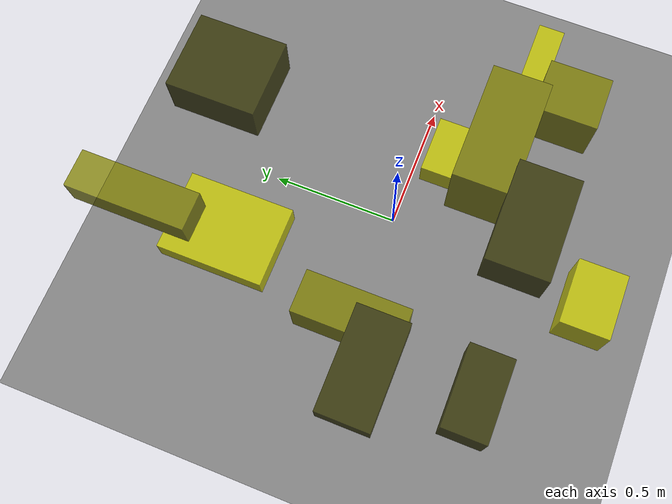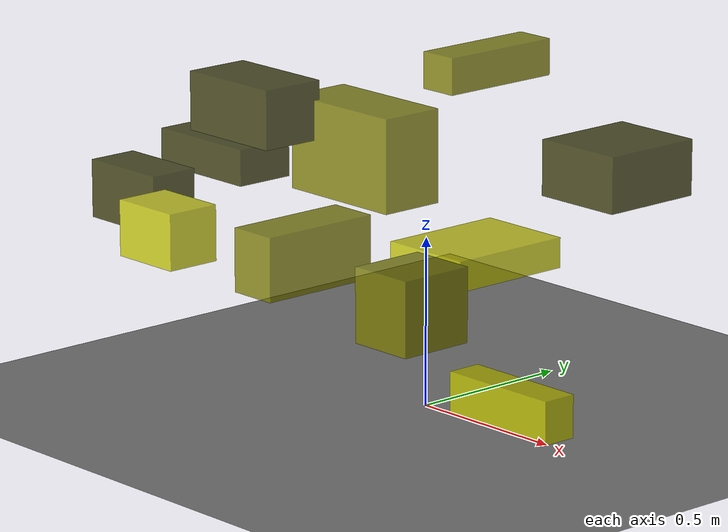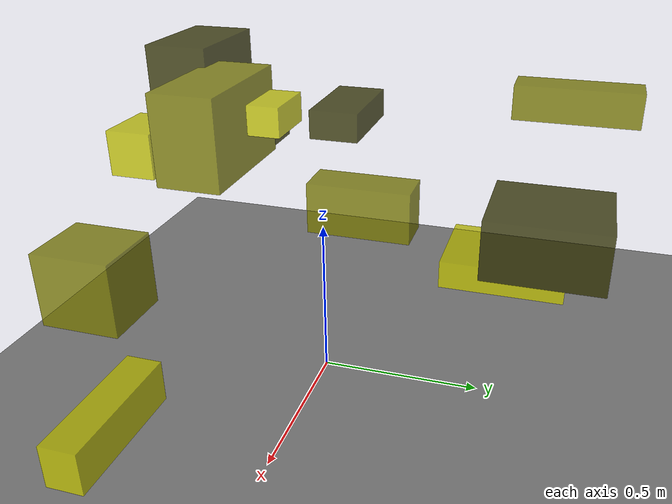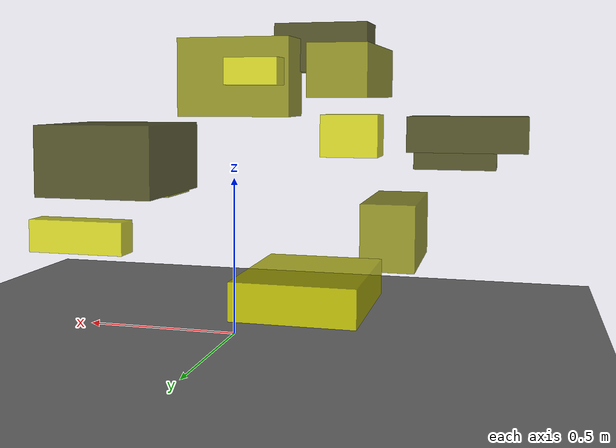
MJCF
<?xml version="1.0"?>
<mujoco model="obstacle_scene">
  <compiler angle="radian" coordinate="local"/>
  <option timestep="0.001" gravity="0 0 -9.81"/>

  <asset>
    <material name="obstacle_mat" rgba="0.8 0.8 0.0 0.8"/>
    <material name="ground_mat" rgba="0.5 0.5 0.5 1"/>
  </asset>

  <worldbody>
    <!-- Ground plane -->
    <geom name="ground" type="plane" size="3 3 0.1" material="ground_mat"/>

    <!-- Obstacles -->
    <body name="obstacle_0" pos="-0.712817 -0.146283 0.641917">
      <geom name="obs_0" type="box" size="0.179707 0.092279 0.054181" rgba="0.2 0.2 0.0 0.8"/>
    </body>
    <body name="obstacle_1" pos="-0.507351 -0.023670 0.353235">
      <geom name="obs_1" type="box" size="0.078839 0.195401 0.097261" rgba="0.5 0.5 0.0 0.8"/>
    </body>
    <body name="obstacle_2" pos="-0.022473 -0.158828 0.840807">
      <geom name="obs_2" type="box" size="0.089750 0.058093 0.044784" rgba="0.8 0.8 0.0 0.8"/>
    </body>
    <body name="obstacle_3" pos="-0.656378 -0.500793 0.592203">
      <geom name="obs_3" type="box" size="0.138762 0.075612 0.085467" rgba="0.2 0.2 0.0 0.8"/>
    </body>
    <body name="obstacle_4" pos="-0.495041 0.699812 0.812909">
      <geom name="obs_4" type="box" size="0.063307 0.200365 0.056554" rgba="0.5 0.5 0.0 0.8"/>
    </body>
    <body name="obstacle_5" pos="-0.248452 -0.743872 0.607173">
      <geom name="obs_5" type="box" size="0.110124 0.081603 0.080697" rgba="0.8 0.8 0.0 0.8"/>
    </body>
    <body name="obstacle_6" pos="-0.197110 -0.468377 0.928527">
      <geom name="obs_6" type="box" size="0.162972 0.097004 0.084618" rgba="0.2 0.2 0.0 0.8"/>
    </body>
    <body name="obstacle_7" pos="0.068422 -0.295147 0.823809">
      <geom name="obs_7" type="box" size="0.196193 0.095958 0.134043" rgba="0.5 0.5 0.0 0.8"/>
    </body>
    <body name="obstacle_8" pos="0.705245 -0.334737 0.237076">
      <geom name="obs_8" type="box" size="0.187356 0.051571 0.061111" rgba="0.8 0.8 0.0 0.8"/>
    </body>
    <body name="obstacle_9" pos="0.090033 0.672895 0.606664">
      <geom name="obs_9" type="box" size="0.145403 0.162912 0.085039" rgba="0.2 0.2 0.0 0.8"/>
    </body>
    <body name="obstacle_10" pos="0.467278 -0.482361 0.494747">
      <geom name="obs_10" type="box" size="0.100576 0.113392 0.107075" rgba="0.5 0.5 0.0 0.8"/>
    </body>
    <body name="obstacle_11" pos="-0.360448 0.530256 0.276136">
      <geom name="obs_11" type="box" size="0.153348 0.203876 0.047044" rgba="0.8 0.8 0.0 0.8"/>
    </body>
  </worldbody>
</mujoco>
